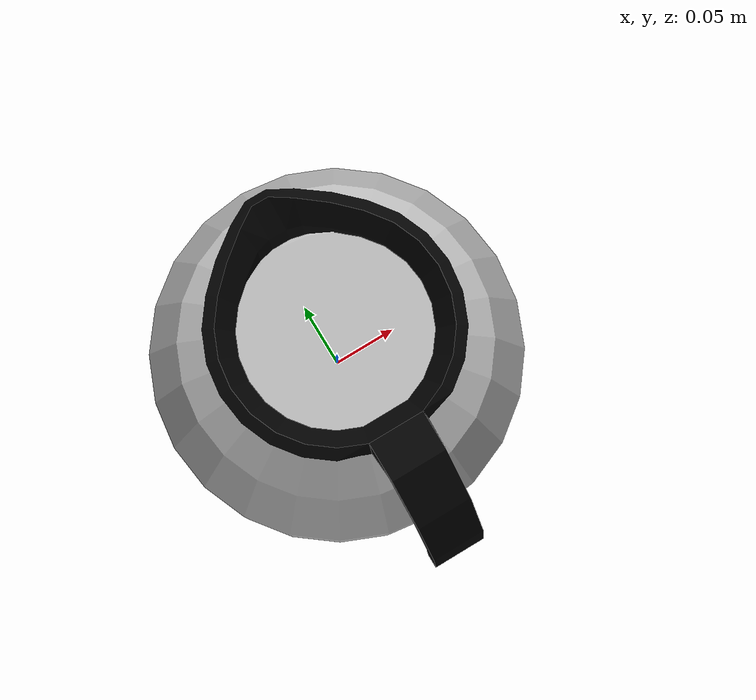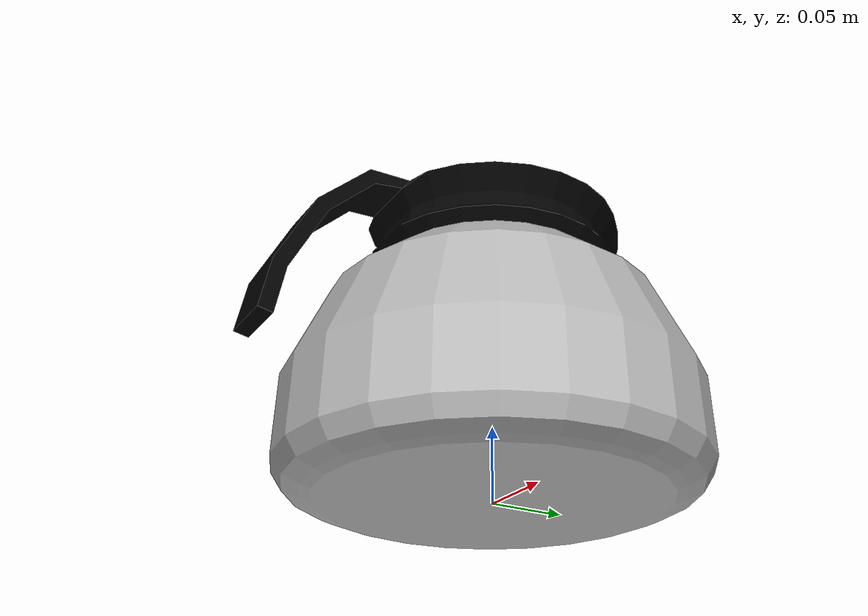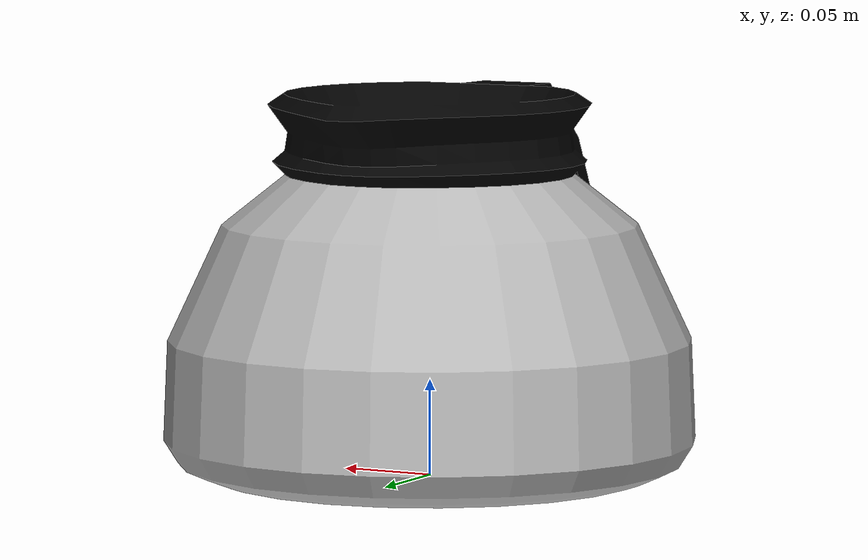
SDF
<?xml version='1.0'?>
<sdf version="1.4">
	<model name="coffee_pot">
		<static>1</static>
		<link name="link">
			<visual name="mesh">
				<geometry>
					<mesh>
						<uri>model://meshes/coffee_pot.dae</uri>
					</mesh>
				</geometry>
			</visual>
			<collision name="collider">
				<pose>0 0 0.08 0 0 0</pose>
				<geometry>
					<cylinder>
						<radius>0.135</radius>
						<length>0.16</length>
					</cylinder>
				</geometry>
			</collision>
		</link>
	</model>
</sdf>
